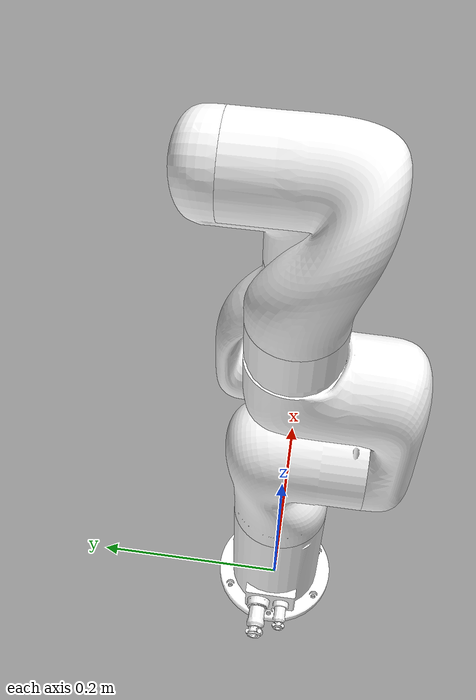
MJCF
<mujoco model="xarm7_mirror">
  <compiler angle="radian" autolimits="true"
            meshdir="@XARM_DESCRIPTION_SHARE@/meshes/xarm7_mirror/visual"/>

  <option integrator="implicitfast"/>

  <asset>
    <material name="white" rgba="1 1 1 1"/>
    <material name="gray" rgba="0.753 0.753 0.753 1"/>

    <mesh name="link_base" file="link_base.stl"/>
    <mesh name="link1" file="link1.stl"/>
    <mesh name="link2" file="link2.stl"/>
    <mesh name="link3" file="link3.stl"/>
    <mesh name="link4" file="link4.stl"/>
    <mesh name="link5" file="link5.stl"/>
    <mesh name="link6" file="link6.stl"/>
    <mesh name="link7" file="link7.stl"/>
    <mesh name="end_tool" file="@XARM_DESCRIPTION_SHARE@/meshes/end_tool/collision/end_tool.stl"/>
  </asset>

  <default>
    <default class="xarm7_mirror">
      <geom type="mesh" material="white" group="1"/>
      <joint axis="0 0 1" armature="0.1" range="-6.28319 6.28319" frictionloss="1"/>
      <default class="size1">
        <joint damping="10"/>
      </default>
      <default class="size2">
        <joint damping="5"/>
      </default>
      <default class="size3">
        <joint damping="2"/>
      </default>
      <site size="0.001" rgba="1 0 0 1" group="4"/>
    </default>
  </default>

  <worldbody>
    <body name="link_base" childclass="xarm7_mirror">
      <geom type="mesh" rgba="1 1 1 1" mesh="link_base"/>
      <body name="link1" pos="-0.00052471 0 0.2668">
        <inertial pos="0.00013 -0.0283 -0.013" quat="0.97939 0.201643 0.00474583 -0.0106163" mass="2.459" diaginertia="0.0060613 0.00562022 0.00307305"/>
        <joint name="joint1" pos="0 0 0" axis="0 0 1" range="-6.28319 6.28319" actuatorfrcrange="-50 50" damping="10" frictionloss="1"/>
        <geom type="mesh" rgba="1 1 1 1" mesh="link1"/>
        <body name="link2" quat="0.707105 0.707108 0 0">
          <inertial pos="-0.00042 0.12607 0.01841" quat="0.863764 0.50367 0.010819 -0.0104983" mass="1.956" diaginertia="0.0104808 0.0102324 0.00212521"/>
          <joint name="joint2" pos="0 0 0" axis="0 0 1" range="-2.0944 2.059" actuatorfrcrange="-50 50" damping="10" frictionloss="1"/>
          <geom type="mesh" rgba="1 1 1 1" mesh="link2"/>
          <body name="link3" pos="0 0.29289 0" quat="0.707105 -0.707108 0 0">
            <inertial pos="0.0445 0.02112 -0.01113" quat="0.934397 -0.222931 0.276748 0.0247852" mass="1.8618" diaginertia="0.00471183 0.00397527 0.00238129"/>
            <joint name="joint3" pos="0 0 0" axis="0 0 1" range="-6.28319 6.28319" actuatorfrcrange="-30 30" damping="5" frictionloss="1"/>
            <geom type="mesh" rgba="1 1 1 1" mesh="link3"/>
            <body name="link4" pos="0.052665 0 0" quat="0.707105 -0.707108 0 0">
              <inertial pos="0.06774 0.11086 0.0127" quat="0.853732 0.43624 -0.27261 0.0807459" mass="1.8955" diaginertia="0.0082254 0.00811598 0.00205548"/>
              <joint name="joint4" pos="0 0 0" axis="0 0 1" range="-3.927 0.19198" actuatorfrcrange="-30 30" damping="5" frictionloss="1"/>
              <geom type="mesh" rgba="1 1 1 1" mesh="link4"/>
              <body name="link5" pos="0.077699 0.34258 0" quat="0.707105 -0.707108 0 0">
                <inertial pos="0.00032 -0.01493 -0.03046" quat="0.999171 0.0394127 -0.000753189 0.0101312" mass="1.428" diaginertia="0.00655955 0.0061438 0.00145938"/>
                <joint name="joint5" pos="0 0 0" axis="0 0 1" range="-6.28319 6.28319" actuatorfrcrange="-30 30" damping="5" frictionloss="1"/>
                <geom type="mesh" rgba="1 1 1 1" mesh="link5"/>
                <body name="link6" quat="0.707105 -0.707108 0 0">
                  <inertial pos="0.065 -0.0315 0.0042" quat="0.208883 0.775745 -0.179933 0.567637" mass="1.397" diaginertia="0.0026971 0.00237409 0.00121156"/>
                  <joint name="joint6" pos="0 0 0" axis="0 0 1" range="-3.14159 1.69297" actuatorfrcrange="-20 20" damping="2" frictionloss="1"/>
                  <geom type="mesh" rgba="1 1 1 1" mesh="link6"/>
                  <body name="link7" pos="0.075998 -0.096156 0" quat="0.707105 0.707108 0 0">
                    <inertial pos="0 0.00344 -0.01034" quat="0.512076 0.487527 -0.493763 0.506255" mass="0.1843" diaginertia="0.000148602 9.66633e-05 7.42948e-05"/>
                    <joint name="joint7" pos="0 0 0" axis="0 0 1" range="-6.28319 6.28319" actuatorfrcrange="-20 20" damping="2" frictionloss="1"/>
                    <geom type="mesh" rgba="1 1 1 1" mesh="link7"/>
                    <site name="attachment_site"/>
                  </body>
                </body>
              </body>
            </body>
          </body>
        </body>
      </body>
    </body>
  </worldbody>

  <actuator>
    <motor name="act1" joint="joint1" class="size1"/>
    <motor name="act2" joint="joint2" class="size1"/>
    <motor name="act3" joint="joint3" class="size2"/>
    <motor name="act4" joint="joint4" class="size2"/>
    <motor name="act5" joint="joint5" class="size2"/>
    <motor name="act6" joint="joint6" class="size3"/>
    <motor name="act7" joint="joint7" class="size3"/>
  </actuator>

  <sensor>
    <force name="EEForceSensor_fsensor" site="attachment_site"/>
    <torque name="EEForceSensor_tsensor" site="attachment_site"/>
  </sensor>

  <keyframe>
    <key name="home" qpos="0 0 0 .909 0 1.15644 0" ctrl="0 -.247 0 .909 0 1.15644 0"/>
  </keyframe>
</mujoco>
